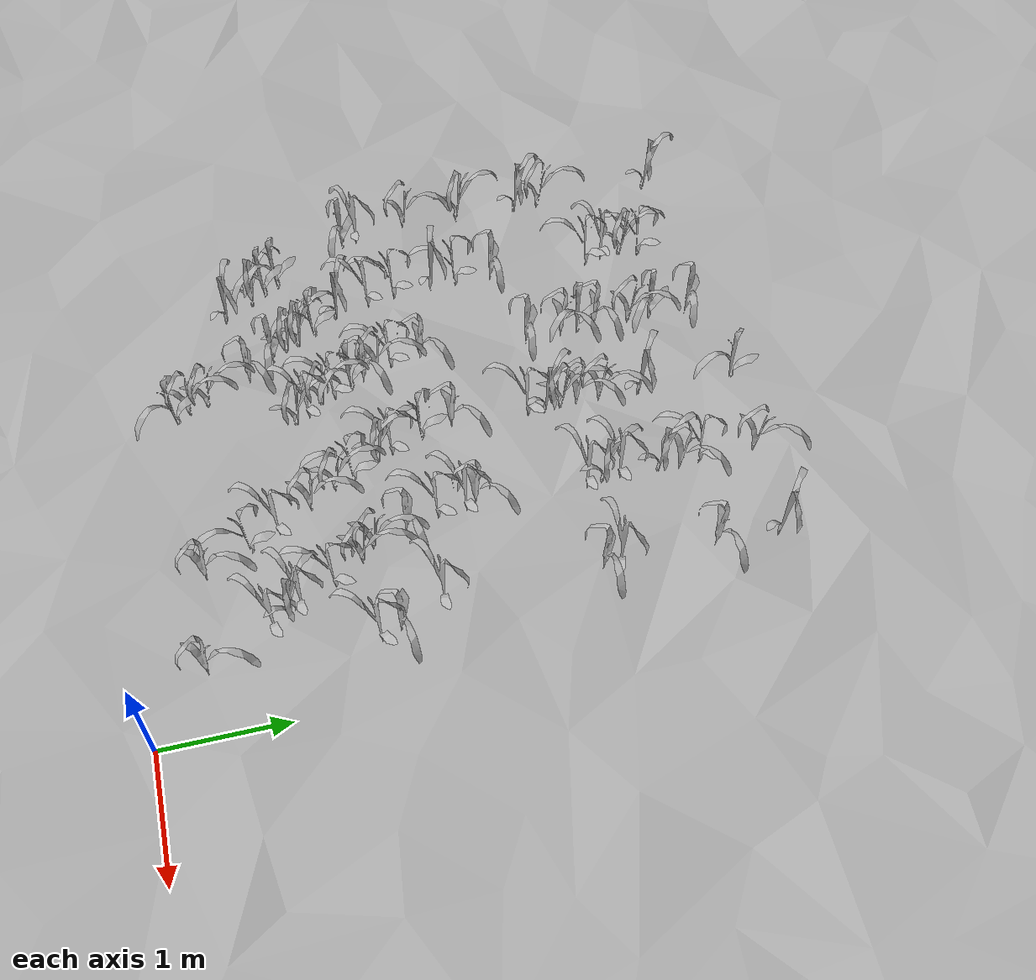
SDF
<sdf version="1.6">
 <world name="default">
  <model name="custom_terrain">
   <static>1</static>
   <link name="link">
    <collision name="collision">
     <geometry><mesh><uri>model://custom_terrain/meshes/terrain.stl</uri></mesh></geometry>
    </collision>
    <visual name="visual">
     <geometry><mesh><uri>model://custom_terrain/meshes/terrain.stl</uri></mesh></geometry>
     <material>
      <script>
       <uri>model://custom_terrain/materials/scripts</uri>
       <uri>model://custom_terrain/materials/textures</uri>
       <name>custom_terrain/terrain</name>
      </script>
     </material>
    </visual>
   </link>
   <pose>-1.53507 2.74629 0.25 0 -0 0</pose>
  </model>
  <include>
   <uri>model://maize_01</uri>
   <pose>-3.553511355616913 1.015519715591729 0.298130027727126 0.0 0.0 3.7159141833830094</pose>
   <name>maize_01_0024</name>
   <static>true</static>
  </include>
  <include>
   <uri>model://maize_01</uri>
   <pose>-3.701589226799579 1.251108949173141 0.298130027727126 0.0 0.0 3.122461391727913</pose>
   <name>maize_01_0026</name>
   <static>true</static>
  </include>
  <include>
   <uri>model://maize_01</uri>
   <pose>-3.785204417043643 1.3649316195686685 0.298130027727126 0.0 0.0 0.08165920619168597</pose>
   <name>maize_01_0027</name>
   <static>true</static>
  </include>
  <include>
   <uri>model://maize_01</uri>
   <pose>-3.8622362099861243 1.484537688607343 0.298130027727126 0.0 0.0 0.017328552184580254</pose>
   <name>maize_01_0028</name>
   <static>true</static>
  </include>
  <include>
   <uri>model://maize_01</uri>
   <pose>-4.197337103055846 2.1108192121852984 0.29843291746035566 0.0 0.0 0.45616426685301054</pose>
   <name>maize_01_0030</name>
   <static>true</static>
  </include>
  <include>
   <uri>model://maize_01</uri>
   <pose>-4.213425510401133 2.245129814301681 0.29843291746035566 0.0 0.0 4.282105960557281</pose>
   <name>maize_01_0031</name>
   <static>true</static>
  </include>
  <include>
   <uri>model://maize_01</uri>
   <pose>-4.303971360781282 2.6837327133476054 0.29843291746035566 0.0 0.0 2.0121442333241513</pose>
   <name>maize_01_0035</name>
   <static>true</static>
  </include>
  <include>
   <uri>model://maize_01</uri>
   <pose>-4.316781519382808 3.174394487851791 0.29843291746035566 0.0 0.0 2.603425036955321</pose>
   <name>maize_01_0038</name>
   <static>true</static>
  </include>
  <include>
   <uri>model://maize_01</uri>
   <pose>-4.285277259324883 3.702888524991318 0.30062281465596047 0.0 0.0 3.2110787540230965</pose>
   <name>maize_01_0040</name>
   <static>true</static>
  </include>
  <include>
   <uri>model://maize_01</uri>
   <pose>-4.292784419722234 3.919240395021373 0.30062281465596047 0.0 0.0 2.223316650808182</pose>
   <name>maize_01_0041</name>
   <static>true</static>
  </include>
  <include>
   <uri>model://maize_01</uri>
   <pose>-4.317581517556513 4.924926001546315 0.3005668615041675 0.0 0.0 3.024532714668203</pose>
   <name>maize_01_0043</name>
   <static>true</static>
  </include>
  <include>
   <uri>model://maize_01</uri>
   <pose>-2.5873100536612568 0.49106919523139925 0.29562531661520675 0.0 0.0 6.280524038659252</pose>
   <name>maize_01_0078</name>
   <static>true</static>
  </include>
  <include>
   <uri>model://maize_01</uri>
   <pose>-2.6469571788114794 0.6029479741588053 0.29562531661520675 0.0 0.0 2.2692072327197814</pose>
   <name>maize_01_0079</name>
   <static>true</static>
  </include>
  <include>
   <uri>model://maize_01</uri>
   <pose>-2.6907755242412503 0.7586937102701199 0.29562531661520675 0.0 0.0 2.509799935226596</pose>
   <name>maize_01_0080</name>
   <static>true</static>
  </include>
  <include>
   <uri>model://maize_01</uri>
   <pose>-2.8762519124756376 1.1099151490145986 0.2974299765986175 0.0 0.0 1.2394152793384987</pose>
   <name>maize_01_0082</name>
   <static>true</static>
  </include>
  <include>
   <uri>model://maize_01</uri>
   <pose>-3.045825980551641 1.3301807007487356 0.2974299765986175 0.0 0.0 0.6792271526109787</pose>
   <name>maize_01_0084</name>
   <static>true</static>
  </include>
  <include>
   <uri>model://maize_01</uri>
   <pose>-3.1234285954471717 1.4644570050705015 0.2974299765986175 0.0 0.0 2.92769435021656</pose>
   <name>maize_01_0085</name>
   <static>true</static>
  </include>
  <include>
   <uri>model://maize_01</uri>
   <pose>-3.1669062256921063 1.5670221087370784 0.2974299765986175 0.0 0.0 2.89145526982978</pose>
   <name>maize_01_0086</name>
   <static>true</static>
  </include>
  <include>
   <uri>model://maize_01</uri>
   <pose>-3.2459566719002337 1.7065941584194124 0.2985292159367102 0.0 0.0 6.0024044824257485</pose>
   <name>maize_01_0087</name>
   <static>true</static>
  </include>
  <include>
   <uri>model://maize_01</uri>
   <pose>-3.3972870597738365 1.9240552792608507 0.2985292159367102 0.0 0.0 3.555198688931049</pose>
   <name>maize_01_0089</name>
   <static>true</static>
  </include>
  <include>
   <uri>model://maize_01</uri>
   <pose>-3.483455573924775 2.211342313481739 0.2983892592633433 0.0 0.0 4.8671116039445055</pose>
   <name>maize_01_0091</name>
   <static>true</static>
  </include>
  <include>
   <uri>model://maize_01</uri>
   <pose>-3.527028630317879 2.442533515859209 0.2983892592633433 0.0 0.0 5.169608127667474</pose>
   <name>maize_01_0093</name>
   <static>true</static>
  </include>
  <include>
   <uri>model://maize_01</uri>
   <pose>-3.5471102146072293 2.7803373220525445 0.2983892592633433 0.0 0.0 3.7348141024443686</pose>
   <name>maize_01_0096</name>
   <static>true</static>
  </include>
  <include>
   <uri>model://maize_01</uri>
   <pose>-3.5568660209007104 2.9892173744235895 0.2983892592633433 0.0 0.0 5.287605900317257</pose>
   <name>maize_01_0097</name>
   <static>true</static>
  </include>
  <include>
   <uri>model://maize_01</uri>
   <pose>-3.5463511296136407 3.297227253958344 0.2983892592633433 0.0 0.0 0.7904044780898526</pose>
   <name>maize_01_0099</name>
   <static>true</static>
  </include>
  <include>
   <uri>model://maize_01</uri>
   <pose>-3.5337960846812426 4.152628220210384 0.30055292686338814 0.0 0.0 4.967728544414715</pose>
   <name>maize_01_0101</name>
   <static>true</static>
  </include>
  <include>
   <uri>model://maize_01</uri>
   <pose>-3.5566000803272693 4.301455851341266 0.30055292686338814 0.0 0.0 4.3376047987825395</pose>
   <name>maize_01_0102</name>
   <static>true</static>
  </include>
  <include>
   <uri>model://maize_01</uri>
   <pose>-3.5581769839938397 4.471954401550181 0.30055292686338814 0.0 0.0 2.4865935297529904</pose>
   <name>maize_01_0103</name>
   <static>true</static>
  </include>
  <include>
   <uri>model://maize_01</uri>
   <pose>-3.5334510304083158 4.6262888151670145 0.30055292686338814 0.0 0.0 5.130359262817705</pose>
   <name>maize_01_0104</name>
   <static>true</static>
  </include>
  <include>
   <uri>model://maize_01</uri>
   <pose>-2.3542755942313485 1.4268677347338252 0.29802047241567764 0.0 0.0 2.671994580706277</pose>
   <name>maize_01_0149</name>
   <static>true</static>
  </include>
  <include>
   <uri>model://maize_01</uri>
   <pose>-2.419213127442763 1.5359117934384716 0.29802047241567764 0.0 0.0 4.736903949275797</pose>
   <name>maize_01_0150</name>
   <static>true</static>
  </include>
  <include>
   <uri>model://maize_01</uri>
   <pose>-2.50696249297475 1.656988620708584 0.29802047241567764 0.0 0.0 2.515227664649338</pose>
   <name>maize_01_0151</name>
   <static>true</static>
  </include>
  <include>
   <uri>model://maize_01</uri>
   <pose>-2.563210837394043 1.763402110522948 0.29802047241567764 0.0 0.0 5.0969894401205895</pose>
   <name>maize_01_0152</name>
   <static>true</static>
  </include>
  <include>
   <uri>model://maize_01</uri>
   <pose>-2.631932517354745 1.9154094356934717 0.29802047241567764 0.0 0.0 0.008795678634441244</pose>
   <name>maize_01_0153</name>
   <static>true</static>
  </include>
  <include>
   <uri>model://maize_01</uri>
   <pose>-2.670411633898165 2.0215566065165844 0.29802047241567764 0.0 0.0 1.1970025165682754</pose>
   <name>maize_01_0154</name>
   <static>true</static>
  </include>
  <include>
   <uri>model://maize_01</uri>
   <pose>-2.746698726054034 2.1493248034528434 0.29802047241567764 0.0 0.0 2.0213183076419163</pose>
   <name>maize_01_0155</name>
   <static>true</static>
  </include>
  <include>
   <uri>model://maize_01</uri>
   <pose>-2.7799440682236427 2.272083570431812 0.29802047241567764 0.0 0.0 5.0588659044747155</pose>
   <name>maize_01_0156</name>
   <static>true</static>
  </include>
  <include>
   <uri>model://maize_01</uri>
   <pose>-2.790767013238382 2.5212518864075446 0.29802047241567764 0.0 0.0 1.2863684499754549</pose>
   <name>maize_01_0158</name>
   <static>true</static>
  </include>
  <include>
   <uri>model://maize_01</uri>
   <pose>-2.7805146520129984 3.421578367413567 0.29802047241567764 0.0 0.0 0.6661819181573747</pose>
   <name>maize_01_0164</name>
   <static>true</static>
  </include>
  <include>
   <uri>model://maize_01</uri>
   <pose>-2.788451169182441 3.7259747708406175 0.29802047241567764 0.0 0.0 1.3353568345255835</pose>
   <name>maize_01_0166</name>
   <static>true</static>
  </include>
  <include>
   <uri>model://maize_01</uri>
   <pose>-2.799967677461566 3.8731282183029383 0.29802047241567764 0.0 0.0 6.206083872773956</pose>
   <name>maize_01_0167</name>
   <static>true</static>
  </include>
  <include>
   <uri>model://maize_01</uri>
   <pose>-2.806763757923239 4.008573551805932 0.29802047241567764 0.0 0.0 1.0605384510884583</pose>
   <name>maize_01_0168</name>
   <static>true</static>
  </include>
  <include>
   <uri>model://maize_01</uri>
   <pose>-2.798437820052176 4.320536305061766 0.29802047241567764 0.0 0.0 1.8719166095897908</pose>
   <name>maize_01_0170</name>
   <static>true</static>
  </include>
  <include>
   <uri>model://maize_01</uri>
   <pose>-2.801926679168956 4.499417458454736 0.29802047241567764 0.0 0.0 0.13820792651453787</pose>
   <name>maize_01_0171</name>
   <static>true</static>
  </include>
  <include>
   <uri>model://maize_01</uri>
   <pose>-2.813040589263109 4.833185391529553 0.29802047241567764 0.0 0.0 0.5423860228804193</pose>
   <name>maize_01_0173</name>
   <static>true</static>
  </include>
  <include>
   <uri>model://maize_01</uri>
   <pose>-1.106056116706976 0.5522489203266578 0.29853187421893257 0.0 0.0 1.9465953062249834</pose>
   <name>maize_01_0208</name>
   <static>true</static>
  </include>
  <include>
   <uri>model://maize_01</uri>
   <pose>-1.2744823994863455 0.9090987528574599 0.2983133183180139 0.0 0.0 5.747931553735355</pose>
   <name>maize_01_0210</name>
   <static>true</static>
  </include>
  <include>
   <uri>model://maize_01</uri>
   <pose>-1.3848780395915126 1.1412759801417038 0.2983133183180139 0.0 0.0 4.766547807838341</pose>
   <name>maize_01_0212</name>
   <static>true</static>
  </include>
  <include>
   <uri>model://maize_01</uri>
   <pose>-1.5379192895491889 1.4099271695368996 0.2983133183180139 0.0 0.0 2.08322205187894</pose>
   <name>maize_01_0214</name>
   <static>true</static>
  </include>
  <include>
   <uri>model://maize_01</uri>
   <pose>-1.6743975817590935 1.626297769316415 0.29858168232272014 0.0 0.0 2.4755370905607923</pose>
   <name>maize_01_0215</name>
   <static>true</static>
  </include>
  <include>
   <uri>model://maize_01</uri>
   <pose>-1.7452319155154934 1.7759325013317564 0.29858168232272014 0.0 0.0 5.582362585549439</pose>
   <name>maize_01_0216</name>
   <static>true</static>
  </include>
  <include>
   <uri>model://maize_01</uri>
   <pose>-1.8746929930001375 2.002556748294244 0.29858168232272014 0.0 0.0 2.8437651616951274</pose>
   <name>maize_01_0218</name>
   <static>true</static>
  </include>
  <include>
   <uri>model://maize_01</uri>
   <pose>-1.9203383463824324 2.115227414114837 0.29858168232272014 0.0 0.0 4.907377513593954</pose>
   <name>maize_01_0219</name>
   <static>true</static>
  </include>
  <include>
   <uri>model://maize_01</uri>
   <pose>-2.0219309184050633 2.375357779116198 0.29858168232272014 0.0 0.0 5.844364559026823</pose>
   <name>maize_01_0221</name>
   <static>true</static>
  </include>
  <include>
   <uri>model://maize_01</uri>
   <pose>-2.062503407745961 2.6249705897673956 0.29858168232272014 0.0 0.0 1.3853284582280792</pose>
   <name>maize_01_0224</name>
   <static>true</static>
  </include>
  <include>
   <uri>model://maize_01</uri>
   <pose>-2.053499766258849 3.256375381195037 0.29858168232272014 0.0 0.0 4.746885177144807</pose>
   <name>maize_01_0227</name>
   <static>true</static>
  </include>
  <include>
   <uri>model://maize_01</uri>
   <pose>-2.046209839599853 3.402475040709034 0.29858168232272014 0.0 0.0 3.2324683231455444</pose>
   <name>maize_01_0228</name>
   <static>true</static>
  </include>
  <include>
   <uri>model://maize_01</uri>
   <pose>-2.0582844487145926 3.533080885776514 0.29858168232272014 0.0 0.0 2.3312846641927583</pose>
   <name>maize_01_0229</name>
   <static>true</static>
  </include>
  <include>
   <uri>model://maize_01</uri>
   <pose>-2.066300592764047 3.664519510433174 0.29858168232272014 0.0 0.0 1.5580692882425378</pose>
   <name>maize_01_0230</name>
   <static>true</static>
  </include>
  <include>
   <uri>model://maize_01</uri>
   <pose>-2.065946663502853 3.8539702701908376 0.29858168232272014 0.0 0.0 1.7915803567850899</pose>
   <name>maize_01_0231</name>
   <static>true</static>
  </include>
  <include>
   <uri>model://maize_01</uri>
   <pose>-2.047825171950663 4.188539844633218 0.29858168232272014 0.0 0.0 3.3819264090446155</pose>
   <name>maize_01_0233</name>
   <static>true</static>
  </include>
  <include>
   <uri>model://maize_01</uri>
   <pose>-2.0460154160670636 4.967455718463136 0.29858168232272014 0.0 0.0 5.838906355624722</pose>
   <name>maize_01_0238</name>
   <static>true</static>
  </include>
  <include>
   <uri>model://maize_01</uri>
   <pose>-0.34477508339463436 0.4737825990442619 0.2980741951089132 0.0 0.0 1.9555725965990622</pose>
   <name>maize_01_0278</name>
   <static>true</static>
  </include>
  <include>
   <uri>model://maize_01</uri>
   <pose>-0.5801494302176928 0.9905428644980832 0.2980741951089132 0.0 0.0 4.595953194583849</pose>
   <name>maize_01_0282</name>
   <static>true</static>
  </include>
  <include>
   <uri>model://maize_01</uri>
   <pose>-0.6543607989581164 1.1173805844661489 0.2980741951089132 0.0 0.0 3.2355891034607653</pose>
   <name>maize_01_0283</name>
   <static>true</static>
  </include>
  <include>
   <uri>model://maize_01</uri>
   <pose>-0.7174633667288968 1.212257223490443 0.2980741951089132 0.0 0.0 4.450079179958104</pose>
   <name>maize_01_0284</name>
   <static>true</static>
  </include>
  <include>
   <uri>model://maize_01</uri>
   <pose>-0.8469761066933892 1.4764011923994855 0.2980741951089132 0.0 0.0 5.109657346527614</pose>
   <name>maize_01_0286</name>
   <static>true</static>
  </include>
  <include>
   <uri>model://maize_01</uri>
   <pose>-0.9889649496227195 1.7141858316516954 0.2980741951089132 0.0 0.0 2.1536230761633113</pose>
   <name>maize_01_0288</name>
   <static>true</static>
  </include>
  <include>
   <uri>model://maize_01</uri>
   <pose>-1.0839801235890352 1.8146651935052451 0.2980741951089132 0.0 0.0 2.1647313836325526</pose>
   <name>maize_01_0289</name>
   <static>true</static>
  </include>
  <include>
   <uri>model://maize_01</uri>
   <pose>-1.1895305549443937 2.077654672223105 0.2980741951089132 0.0 0.0 0.9991064376479477</pose>
   <name>maize_01_0291</name>
   <static>true</static>
  </include>
  <include>
   <uri>model://maize_01</uri>
   <pose>-1.2704914737936546 2.3454684826917984 0.2980741951089132 0.0 0.0 4.912695766120722</pose>
   <name>maize_01_0293</name>
   <static>true</static>
  </include>
  <include>
   <uri>model://maize_01</uri>
   <pose>-1.2860187935230625 2.5747495622239414 0.2980741951089132 0.0 0.0 4.5241118627285735</pose>
   <name>maize_01_0295</name>
   <static>true</static>
  </include>
  <include>
   <uri>model://maize_01</uri>
   <pose>-1.3142195178559228 2.6494565233816725 0.2980741951089132 0.0 0.0 1.4324338881868077</pose>
   <name>maize_01_0296</name>
   <static>true</static>
  </include>
  <include>
   <uri>model://maize_01</uri>
   <pose>-1.280420539230551 3.5389030344023724 0.2980741951089132 0.0 0.0 4.325825151307318</pose>
   <name>maize_01_0301</name>
   <static>true</static>
  </include>
  <include>
   <uri>model://maize_01</uri>
   <pose>-1.2880828729918445 3.663879295782172 0.2980741951089132 0.0 0.0 2.9036517979848706</pose>
   <name>maize_01_0302</name>
   <static>true</static>
  </include>
  <include>
   <uri>model://maize_01</uri>
   <pose>-1.3016144705972545 3.8060998656120053 0.2980741951089132 0.0 0.0 4.354085990940933</pose>
   <name>maize_01_0303</name>
   <static>true</static>
  </include>
  <include>
   <uri>model://maize_01</uri>
   <pose>-1.2918106301627315 4.1205459200696 0.2980741951089132 0.0 0.0 2.926563206481489</pose>
   <name>maize_01_0305</name>
   <static>true</static>
  </include>
  <include>
   <uri>model://maize_01</uri>
   <pose>-1.281527545851622 4.28620809062276 0.2980741951089132 0.0 0.0 1.4436792329718686</pose>
   <name>maize_01_0306</name>
   <static>true</static>
  </include>
  <include>
   <uri>model://maize_01</uri>
   <pose>-1.313386455114203 4.4564165047531885 0.2980741951089132 0.0 0.0 4.839911442866686</pose>
   <name>maize_01_0307</name>
   <static>true</static>
  </include>
  <include>
   <uri>model://maize_01</uri>
   <pose>-1.315002893785007 4.908616776108329 0.2980741951089132 0.0 0.0 1.6432664125197873</pose>
   <name>maize_01_0310</name>
   <static>true</static>
  </include>
  <include>
   <uri>model://maize_01</uri>
   <pose>-0.33094973357394797 1.731561252301305 0.2989652620931421 0.0 0.0 4.771514243634816</pose>
   <name>maize_01_0339</name>
   <static>true</static>
  </include>
  <include>
   <uri>model://maize_01</uri>
   <pose>-0.37171589499352886 1.8765283585709527 0.2989652620931421 0.0 0.0 0.9279598226448749</pose>
   <name>maize_01_0340</name>
   <static>true</static>
  </include>
  <include>
   <uri>model://maize_01</uri>
   <pose>-0.5325088738870665 2.237318713420964 0.3002092080228909 0.0 0.0 4.338207076772166</pose>
   <name>maize_01_0341</name>
   <static>true</static>
  </include>
  <include>
   <uri>model://maize_01</uri>
   <pose>-0.5451103749846105 3.4491076114931123 0.2995136288696401 0.0 0.0 0.780050777093096</pose>
   <name>maize_01_0345</name>
   <static>true</static>
  </include>
  <include>
   <uri>model://maize_01</uri>
   <pose>-0.5416069639332453 3.5845922800494283 0.2995136288696401 0.0 0.0 4.036095894820048</pose>
   <name>maize_01_0346</name>
   <static>true</static>
  </include>
  <include>
   <uri>model://maize_01</uri>
   <pose>-0.5474769732693436 4.326999671468504 0.30031936771219947 0.0 0.0 0.8867513148687852</pose>
   <name>maize_01_0349</name>
   <static>true</static>
  </include>
  <include>
   <uri>model://maize_01</uri>
   <pose>-0.534264697549663 4.839853326514816 0.3001846581496553 0.0 0.0 3.2675767126063993</pose>
   <name>maize_01_0350</name>
   <static>true</static>
  </include>
 </world>
</sdf>
